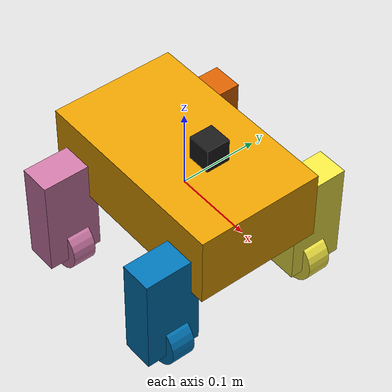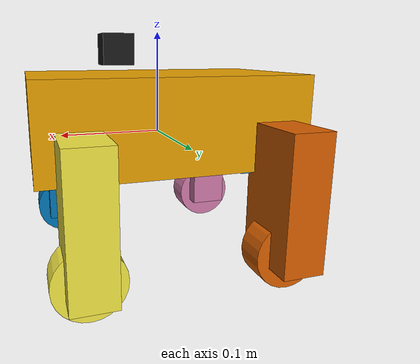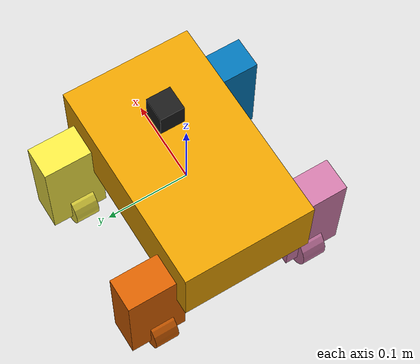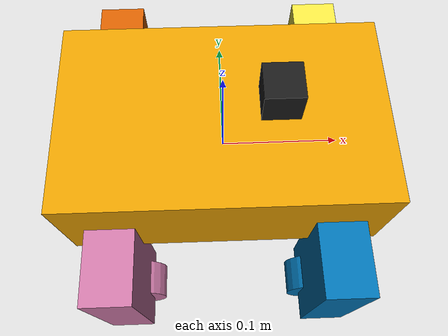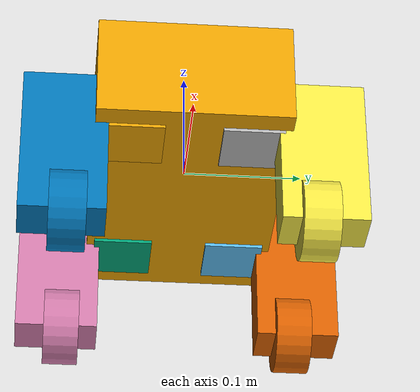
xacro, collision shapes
<?xml version="1.0"?>

<robot name="pavlov_mini" xmlns:xacro="http://ros.org/wiki/xacro">

  <xacro:arg name="is_ignition" default="true"/>
  <!-- Simulation-only tweak: tilt camera down/up (radians). Negative looks down. -->
  <xacro:arg name="camera_sensor_pitch" default="-0.15"/>

  <xacro:include filename="$(find pavlov_description)/urdf/pavlov_mini_ros2_control.xacro" />

  <link name="base_link">
    <visual>
      <geometry>
        <mesh filename= "package://pavlov_description/meshes/base.dae"/>
      </geometry>
    </visual>
    <inertial>
      <origin xyz="-0.000492 0.000002 0.014305" rpy="0 0 0"/>
      <mass value="2.05964"/>
      <inertia
        ixx="0.00372"
        iyy="0.00868"
        izz="0.00992"
        ixy="0.0"
        ixz="0.0"
        iyz="0.0"/>
    </inertial>
    <collision>
      <origin xyz="0.000 0.000 0.015" rpy ="0.000 0.000 0.000"/>
      <geometry>
        <box size="0.260 0.160 0.090"/>
      </geometry>
    </collision>
  </link>

  <link name="camera_link">
    <visual>
      <origin xyz="0.0 0.0 0.0" rpy="0.0 0.0 0.0"/>
      <geometry>
        <box size="0.030 0.030 0.030"/>
      </geometry>
      <material name="black">
        <color rgba="0.1 0.1 0.1 1.0"/>
      </material>
    </visual>
    <inertial>
      <mass value="0.050"/>
      <inertia ixx="0.000001" ixy="0.0" ixz="0.0"
              iyy="0.000001" iyz="0.0"
              izz="0.000001"/>
    </inertial>
    <collision>
      <origin xyz="0.0 0.0 0.0" rpy="0.0 0.0 0.0"/>
      <geometry>
        <box size="0.030 0.030 0.030"/>
      </geometry>
    </collision>
  </link>

  <link name="camera_optical_frame">
    <inertial>
      <mass value="0.001"/>
      <inertia ixx="0.000001" ixy="0.0" ixz="0.0"
              iyy="0.000001" iyz="0.0"
              izz="0.000001"/>
    </inertial>
  </link>

  <link name="hip_fl_ref">
    <visual>
      <geometry>
        <box size="0.002 0.002 0.002"/>
      </geometry>
    </visual>
    <inertial>
      <origin xyz="0.000 0.000 0.000" rpy ="0.000 0.000 0.000"/>
      <mass value="0.001"/>  <!-- 0.000 yerine -->
      <inertia
        ixx="0.000001" ixy="0.00000" ixz="0.00000"
        iyy="0.000001" iyz="0.00000"
        izz="0.000001"/>
    </inertial>
    <collision>
      <origin xyz="0.000 0.000 0.000" rpy ="0.000 0.000 0.000"/>
      <geometry>
        <box size="0.002 0.002 0.002"/>
      </geometry>
    </collision>
  </link>

  <link name="hip_fr_ref">
    <visual>
      <geometry>
        <box size="0.002 0.002 0.002"/>
      </geometry>
    </visual>
    <inertial>
      <origin xyz="0.000 0.000 0.000" rpy ="0.000 0.000 0.000"/>
      <mass value="0.001"/>
      <inertia
        ixx="0.000001" ixy="0.00000" ixz="0.00000"
        iyy="0.000001" iyz="0.00000"
        izz="0.000001"/>
    </inertial>
    <collision>
      <origin xyz="0.000 0.000 0.000" rpy ="0.000 0.000 0.000"/>
      <geometry>
        <box size="0.002 0.002 0.002"/>
      </geometry>
    </collision>
  </link>

  <link name="hip_bl_ref">
    <visual>
      <geometry>
        <box size="0.002 0.002 0.002"/>
      </geometry>
    </visual>
    <inertial>
      <origin xyz="0.000 0.000 0.000" rpy ="0.000 0.000 0.000"/>
      <mass value="0.001"/>
      <inertia
        ixx="0.000001" ixy="0.00000" ixz="0.00000"
        iyy="0.000001" iyz="0.00000"
        izz="0.000001"/>
    </inertial>
    <collision>
      <origin xyz="0.000 0.000 0.000" rpy ="0.000 0.000 0.000"/>
      <geometry>
        <box size="0.002 0.002 0.002"/>
      </geometry>
    </collision>
  </link>

  <link name="hip_br_ref">
    <visual>
      <geometry>
        <box size="0.002 0.002 0.002"/>
      </geometry>
    </visual>
    <inertial>
      <origin xyz="0.000 0.000 0.000" rpy ="0.000 0.000 0.000"/>
      <mass value="0.001"/>
      <inertia
        ixx="0.000001" ixy="0.00000" ixz="0.00000"
        iyy="0.000001" iyz="0.00000"
        izz="0.000001"/>
    </inertial>
    <collision>
      <origin xyz="0.000 0.000 0.000" rpy ="0.000 0.000 0.000"/>
      <geometry>
        <box size="0.002 0.002 0.002"/>
      </geometry>
    </collision>
  </link>

  <link name="hip_fl_link">
    <visual>
      <geometry>
        <mesh filename= "package://pavlov_description/meshes/hip_fl.dae"/>
      </geometry>
    </visual>
    <inertial>
      <origin xyz="-0.002211 0.000093 0.004829" rpy="0 0 0"/>
      <mass value="0.04528"/>
      <inertia
        ixx="0.00002615"
        iyy="0.00002831"
        izz="0.00002071"
        ixy="0.0"
        ixz="0.0"
        iyz="0.0"/>
    </inertial>
    <collision>
      <origin xyz="-0.005 -0.005 0.005" rpy ="0.000 0.000 0.000"/>
      <geometry>
        <box size="0.050 0.050 0.070"/>
      </geometry>
    </collision>
  </link>

  <link name="hip_fr_link">
    <visual>
      <geometry>
        <mesh filename= "package://pavlov_description/meshes/hip_fr.dae"/>
      </geometry>
    </visual>
    <inertial>
        <origin xyz="-0.002212 -0.000095 0.004830" rpy="0 0 0"/>
        <mass value="0.04528"/>
        <inertia
          ixx="0.00002615"
          iyy="0.00002831"
          izz="0.00002071"
          ixy="0.0"
          ixz="0.0"
          iyz="0.0"/>
    </inertial>
    <collision>
      <origin xyz="-0.005 0.005 0.005" rpy ="0.000 0.000 0.000"/>
      <geometry>
        <box size="0.050 0.050 0.070"/>
      </geometry>
    </collision>
  </link>

  <link name="hip_bl_link">
    <visual>
      <geometry>
        <mesh filename= "package://pavlov_description/meshes/hip_bl.dae"/>
      </geometry>
    </visual>
    <inertial>
      <origin xyz="0.002212 0.000095 0.004830" rpy="0 0 0"/>
      <mass value="0.04528"/>
      <inertia
        ixx="0.00002615"
        iyy="0.00002831"
        izz="0.00002071"
        ixy="0.0"
        ixz="0.0"
        iyz="0.0"/>
    </inertial>
    <collision>
      <origin xyz="0.005 -0.005 0.005" rpy ="0.000 0.000 0.000"/>
      <geometry>
        <box size="0.050 0.050 0.070"/>
      </geometry>
    </collision>
  </link>

  <link name="hip_br_link">
    <visual>
      <geometry>
        <mesh filename= "package://pavlov_description/meshes/hip_br.dae"/>
      </geometry>
    </visual>
    <inertial>
      <origin xyz="0.002211 -0.000093 0.004829" rpy="0 0 0"/>
      <mass value="0.04528"/>
      <inertia
        ixx="0.00002615"
        iyy="0.00002831"
        izz="0.00002071"
        ixy="0.0"
        ixz="0.0"
        iyz="0.0"/>
    </inertial>
    <collision>
      <origin xyz="0.005 0.005 0.005" rpy ="0.000 0.000 0.000"/>
      <geometry>
        <box size="0.050 0.050 0.070"/>
      </geometry>
    </collision>
  </link>

  <link name="femur_fl_link">
    <visual>
      <geometry>
        <mesh filename= "package://pavlov_description/meshes/femur_fl.dae"/>
      </geometry>
    </visual>
    <inertial>
      <origin xyz="-0.000176 0.010059 -0.024478" rpy="0 0 0"/>
      <mass value="0.096623"/>
      <inertia
        ixx="0.00109482916"
        iyy="0.00092023806"
        izz="0.00034947930"
        ixy="0.0"
        ixz="0.0"
        iyz="0.0"/>
    </inertial>
    <collision>
      <origin xyz="0.000 0.015 -0.045" rpy ="0.000 0.000 0.000"/>
      <geometry>
        <box size="0.040 0.070 0.130"/>
      </geometry>
    </collision>
  </link>

  <link name="femur_fr_link">
    <visual>
      <geometry>
        <mesh filename= "package://pavlov_description/meshes/femur_fr.dae"/>
      </geometry>
    </visual>
    <inertial>
      <origin xyz="-0.000176 -0.010119 -0.024478" rpy="0 0 0"/>
      <mass value="0.096623"/>
      <inertia
        ixx="0.00019204"
        iyy="0.00016143"
        izz="0.00006129"
        ixy="0.0"
        ixz="0.0"
        iyz="0.0"/>
    </inertial>
    <collision>
      <origin xyz="0.000 -0.015 -0.045" rpy ="0.000 0.000 0.000"/>
      <geometry>
        <box size="0.040 0.070 0.130"/>
      </geometry>
    </collision>
  </link>

  <link name="femur_bl_link">
    <visual>
      <geometry>
        <mesh filename= "package://pavlov_description/meshes/femur_bl.dae"/>
      </geometry>
    </visual>
    <inertial>
      <origin xyz="-0.000176 0.010059 -0.024478" rpy="0 0 0"/>
      <mass value="0.096623"/>
      <inertia
        ixx="0.00109482916"
        iyy="0.00092023806"
        izz="0.00034947930"
        ixy="0.0"
        ixz="0.0"
        iyz="0.0"/>
    </inertial>
    <collision>
      <origin xyz="0.000 0.015 -0.045" rpy ="0.000 0.000 0.000"/>
      <geometry>
        <box size="0.040 0.070 0.130"/>
      </geometry>
    </collision>
  </link>

  <link name="femur_br_link">
    <visual>
      <geometry>
        <mesh filename= "package://pavlov_description/meshes/femur_br.dae"/>
      </geometry>
    </visual>
    <inertial>
      <origin xyz="-0.000176 -0.010119 -0.024478" rpy="0 0 0"/>
      <mass value="0.096623"/>
      <inertia
        ixx="0.00019204"
        iyy="0.00016143"
        izz="0.00006129"
        ixy="0.0"
        ixz="0.0"
        iyz="0.0"/>
    </inertial>
    <collision>
      <origin xyz="0.000 -0.015 -0.045" rpy ="0.000 0.000 0.000"/>
      <geometry>
        <box size="0.040 0.070 0.130"/>
      </geometry>
    </collision>
  </link>

  <link name="tibia_fl_link">
    <inertial>
      <origin xyz="0 0 0" rpy="0 0 0"/>
      <mass value="0.010"/>
      <inertia ixx="0.000001" ixy="0" ixz="0" iyy="0.000001" iyz="0" izz="0.000001"/>
    </inertial>
  </link>

  <link name="tibia_fr_link">
    <inertial>
      <origin xyz="0 0 0" rpy="0 0 0"/>
      <mass value="0.010"/>
      <inertia ixx="0.000001" ixy="0" ixz="0" iyy="0.000001" iyz="0" izz="0.000001"/>
    </inertial>
  </link>

  <link name="tibia_bl_link">
    <inertial>
      <origin xyz="0 0 0" rpy="0 0 0"/>
      <mass value="0.010"/>
      <inertia ixx="0.000001" ixy="0" ixz="0" iyy="0.000001" iyz="0" izz="0.000001"/>
    </inertial>
  </link>

  <link name="tibia_br_link">
    <inertial>
      <origin xyz="0 0 0" rpy="0 0 0"/>
      <mass value="0.010"/>
      <inertia ixx="0.000001" ixy="0" ixz="0" iyy="0.000001" iyz="0" izz="0.000001"/>
    </inertial>
  </link>

  <link name="wheel_fl_link">
    <visual>
      <origin xyz="0 -0.01406 0" rpy="-1.57079632679 0 0"/>
      <geometry>
        <mesh filename="package://pavlov_description/meshes/wheel_left_link.STL"/>
      </geometry>
    </visual>
    <inertial>
      <origin xyz="0 0 0" rpy="0 0 0"/>
      <mass value="0.0530086043217644" />
      <inertia ixx="1.8792911368909E-05"  ixy="3.31256392204584E-10" ixz="-1.14082001662767E-08"
               iyy="3.11510738759073E-05" iyz="-3.60499245082192E-10"
               izz="1.88266886146847E-05" />
    </inertial>
    <collision>
      <origin xyz="0 0 0" rpy="-1.57079632679 0 0"/>
      <geometry>
        <cylinder radius="0.0325" length="0.0298"/>
      </geometry>
    </collision>
  </link>

  <link name="wheel_fr_link">
    <visual>
      <origin xyz="0 -0.01406 0" rpy="-1.57079632679 0 0"/>
      <geometry>
        <mesh filename="package://pavlov_description/meshes/wheel_right_link.STL"/>
      </geometry>
    </visual>
    <inertial>
      <origin xyz="0 0 0" rpy="0 0 0"/>
      <mass value="0.0530086090966721" />
      <inertia ixx="1.88176298336665E-05" ixy="-4.8444933029987E-10" ixz="1.88163708851143E-08"
               iyy="3.11510738647764E-05" iyz="-6.93560663069607E-11"
               izz="1.8801969558182E-05" />
    </inertial>
    <collision>
      <origin xyz="0 0 0" rpy="-1.57079632679 0 0"/>
      <geometry>
        <cylinder radius="0.0325" length="0.0298"/>
      </geometry>
    </collision>
  </link>

  <link name="wheel_bl_link">
    <visual>
      <origin xyz="0 -0.01406 0" rpy="-1.57079632679 0 0"/>
      <geometry>
        <mesh filename="package://pavlov_description/meshes/wheel_left_link.STL"/>
      </geometry>
    </visual>
    <inertial>
      <origin xyz="0 0 0" rpy="0 0 0"/>
      <mass value="0.0530086043217644" />
      <inertia ixx="1.8792911368909E-05"  ixy="3.31256392204584E-10" ixz="-1.14082001662767E-08"
               iyy="3.11510738759073E-05" iyz="-3.60499245082192E-10"
               izz="1.88266886146847E-05" />
    </inertial>
    <collision>
      <origin xyz="0 0 0" rpy="-1.57079632679 0 0"/>
      <geometry>
        <cylinder radius="0.0325" length="0.0298"/>
      </geometry>
    </collision>
  </link>

  <link name="wheel_br_link">
    <visual>
      <origin xyz="0 -0.01406 0" rpy="-1.57079632679 0 0"/>
      <geometry>
        <mesh filename="package://pavlov_description/meshes/wheel_right_link.STL"/>
      </geometry>
    </visual>
    <inertial>
      <origin xyz="0 0 0" rpy="0 0 0"/>
      <mass value="0.0530086090966721" />
      <inertia ixx="1.88176298336665E-05" ixy="-4.8444933029987E-10" ixz="1.88163708851143E-08"
               iyy="3.11510738647764E-05" iyz="-6.93560663069607E-11"
               izz="1.8801969558182E-05" />
    </inertial>
    <collision>
      <origin xyz="0 0 0" rpy="-1.57079632679 0 0"/>
      <geometry>
        <cylinder radius="0.0325" length="0.0298"/>
      </geometry>
    </collision>
  </link>

  <!-- JOINTS -->

  <joint name="camera_joint" type="fixed" dont_collapse="true">
    <parent link="base_link"/>
    <child link="camera_link"/>
    <origin xyz="0.04312 0.00000 0.08341" rpy="0.0 0.0 0.0"/>
  </joint>

  <joint name="camera_optical_frame_joint" type="fixed" dont_collapse="true">
    <parent link="camera_link"/>
    <child link="camera_optical_frame"/>
    <origin xyz="0.0 0.0 0.0" rpy="-1.5708 0.0 -1.5708"/>
  </joint>

  <joint name="fl_ref" type="fixed" dont_collapse="true">
    <parent link="base_link"/>
    <child  link="hip_fl_ref"/>
    <origin xyz="0.09170 0.05355 -0.00279"/>
  </joint>

  <joint name="fr_ref" type="fixed" dont_collapse="true">
    <parent link="base_link"/>
    <child  link="hip_fr_ref"/>
    <origin xyz="0.09170 -0.05355 -0.00279"/>
  </joint>

  <joint name="bl_ref" type="fixed" dont_collapse="true">
    <parent link="base_link"/>
    <child  link="hip_bl_ref"/>
    <origin xyz="-0.09170 0.05355 -0.00279"/>
  </joint>

  <joint name="br_ref" type="fixed" dont_collapse="true">
    <parent link="base_link"/>
    <child  link="hip_br_ref"/>
    <origin xyz="-0.09170 -0.05355 -0.00279"/>
  </joint>

  <joint name="hip1_fl" type="revolute">
    <axis xyz="1.000 0.000 0.000"/>
    <dynamics damping="1.0" friction="0.2"/>
    <limit effort="80.00000" lower="-0.78540" upper="1.57080" velocity="1.04720"/>
    <parent link="hip_fl_ref"/>
    <child  link="hip_fl_link"/>
    <origin xyz="0.00000 0.00000 0.00000"/>
  </joint>

  <joint name="hip1_fr" type="revolute">
    <axis xyz="1.000 0.000 0.000"/>
    <dynamics damping="1.0" friction="0.2"/>
    <limit effort="80.00000" lower="-0.78540" upper="1.57080" velocity="1.04720"/>
    <parent link="hip_fr_ref"/>
    <child  link="hip_fr_link"/>
    <origin xyz="0.00000 0.00000 0.00000"/>
  </joint>

  <joint name="hip1_bl" type="revolute">
    <axis xyz="1.000 0.000 0.000"/>
    <dynamics damping="1.0" friction="0.2"/>
    <limit effort="80.00000" lower="-0.78540" upper="1.57080" velocity="1.04720"/>
    <parent link="hip_bl_ref"/>
    <child  link="hip_bl_link"/>
    <origin xyz="0.00000 0.00000 0.00000"/>
  </joint>

  <joint name="hip1_br" type="revolute">
    <axis xyz="1.000 0.000 0.000"/>
    <dynamics damping="1.0" friction="0.2"/>
    <limit effort="80.00000" lower="-0.78540" upper="1.57080" velocity="1.04720"/>
    <parent link="hip_br_ref"/>
    <child  link="hip_br_link"/>
    <origin xyz="0.00000 0.00000 0.00000"/>
  </joint>

  <joint name="hip2_fl" type="revolute">
    <axis xyz="0.000 1.000 0.000"/>
    <dynamics damping="1.5" friction="0.3"/>
    <limit effort="80.00000" lower="0.00000" upper="2.35619" velocity="1.04720"/>
    <parent link="hip_fl_link"/>
    <child  link="femur_fl_link"/>
    <origin xyz="0.00000 0.03559 0.00000"/>
  </joint>

  <joint name="hip2_fr" type="revolute">
    <axis xyz="0.000 1.000 0.000"/>
    <dynamics damping="1.5" friction="0.3"/>
    <limit effort="80.00000" lower="0.00000" upper="2.35619" velocity="1.04720"/>
    <parent link="hip_fr_link"/>
    <child  link="femur_fr_link"/>
    <origin xyz="0.00000 -0.03559 0.00000"/>
  </joint>

  <joint name="hip2_bl" type="revolute">
    <axis xyz="0.000 1.000 0.000"/>
    <dynamics damping="1.5" friction="0.3"/>
    <limit effort="80.00000" lower="0.00000" upper="2.35619" velocity="1.04720"/>
    <parent link="hip_bl_link"/>
    <child  link="femur_bl_link"/>
    <origin xyz="0.00000 0.03559 0.00000" />
  </joint>

  <joint name="hip2_br" type="revolute">
    <axis xyz="0.000 1.000 0.000"/>
    <dynamics damping="1.5" friction="0.3"/>
    <limit effort="80.00000" lower="0.00000" upper="2.35619" velocity="1.04720"/>
    <parent link="hip_br_link"/>
    <child  link="femur_br_link"/>
    <origin xyz="0.00000 -0.03559 0.00000"/>
  </joint>

  <joint name="knee_fl" type="revolute">
    <axis xyz="0.000 1.000 0.000"/>
    <dynamics damping="2.0" friction="0.4"/>
    <limit effort="80.00000" lower="-2.35619" upper="-0.22360" velocity="1.04720"/>
    <parent link="femur_fl_link"/>
    <child  link="tibia_fl_link"/>
    <origin xyz="0.00000 0.01071 -0.09996" rpy="0.000 0 0.000"/>
  </joint>

  <joint name="knee_fr" type="revolute">
    <axis xyz="0.000 1.000 0.000"/>
    <dynamics damping="2.0" friction="0.4"/>
    <limit effort="80.00000" lower="-2.35619" upper="-0.22360" velocity="1.04720"/>
    <parent link="femur_fr_link"/>
    <child  link="tibia_fr_link"/>
    <origin xyz="0.00000 -0.01071 -0.09996" rpy="0.000 0 0.000"/>
  </joint>

  <joint name="knee_bl" type="revolute">
    <axis xyz="0.000 1.000 0.000"/>
    <dynamics damping="2.0" friction="0.4"/>
    <limit effort="80.00000" lower="-2.35619" upper="-0.22360" velocity="1.04720"/>
    <parent link="femur_bl_link"/>
    <child  link="tibia_bl_link"/>
    <origin xyz="0.00000 0.01071 -0.09996" rpy="0.000 0 0.000"/>
  </joint>

  <joint name="knee_br" type="revolute">
    <axis xyz="0.000 1.000 0.000"/>
    <dynamics damping="2.0" friction="0.4"/>
    <limit effort="80.00000" lower="-2.35619" upper="-0.22360" velocity="1.04720"/>
    <parent link="femur_br_link"/>
    <child  link="tibia_br_link"/>
    <origin xyz="0.00000 -0.01071 -0.09996" rpy="0.000 0 0.000"/>
  </joint>

  <!-- Wheels mounted at femur end (knee location). Spin axis is +Y. -->
  <joint name="wheel_fl_joint" type="continuous">
    <axis xyz="0 1 0"/>
    <limit effort="20.0" velocity="100.0"/>
    <dynamics damping="0.0" friction="0.0"/>
    <parent link="femur_fl_link"/>
    <child  link="wheel_fl_link"/>
    <origin xyz="0.00000 0.01071 -0.09996" rpy="0 0 0"/>
  </joint>

  <joint name="wheel_fr_joint" type="continuous">
    <axis xyz="0 1 0"/>
    <limit effort="20.0" velocity="100.0"/>
    <dynamics damping="0.0" friction="0.0"/>
    <parent link="femur_fr_link"/>
    <child  link="wheel_fr_link"/>
    <origin xyz="0.00000 -0.01071 -0.09996" rpy="0 0 0"/>
  </joint>

  <joint name="wheel_bl_joint" type="continuous">
    <axis xyz="0 1 0"/>
    <limit effort="20.0" velocity="100.0"/>
    <dynamics damping="0.0" friction="0.0"/>
    <parent link="femur_bl_link"/>
    <child  link="wheel_bl_link"/>
    <origin xyz="0.00000 0.01071 -0.09996" rpy="0 0 0"/>
  </joint>

  <joint name="wheel_br_joint" type="continuous">
    <axis xyz="0 1 0"/>
    <limit effort="20.0" velocity="100.0"/>
    <dynamics damping="0.0" friction="0.0"/>
    <parent link="femur_br_link"/>
    <child  link="wheel_br_link"/>
    <origin xyz="0.00000 -0.01071 -0.09996" rpy="0 0 0"/>
  </joint>

  <xacro:if value="$(arg is_ignition)">
    <gazebo>
      <plugin filename="ign_ros2_control-system" name="ign_ros2_control::IgnitionROS2ControlPlugin">
        <parameters>$(find pavlov_controller)/config/ros2_controllers.yaml</parameters>
        <robot_param>robot_description</robot_param>
        <robot_param_node>robot_state_publisher</robot_param_node>
      </plugin>
    </gazebo>
  </xacro:if>

  <xacro:unless value="$(arg is_ignition)">
    <gazebo>
      <plugin filename="gz_ros2_control-system" name="gz_ros2_control::GazeboSimROS2ControlPlugin">
        <parameters>$(find pavlov_controller)/config/ros2_controllers.yaml</parameters>
        <robot_param>robot_description</robot_param>
        <robot_param_node>robot_state_publisher</robot_param_node>
      </plugin>
    </gazebo>
  </xacro:unless>

  <gazebo reference="base_link">
    <sensor name="camera_sensor" type="camera">
      <pose>0.04312 0 0.08341 0 $(arg camera_sensor_pitch) 0</pose>
      <always_on>1</always_on>
      <update_rate>30</update_rate>
      <visualize>true</visualize>
      <camera>
        <horizontal_fov>1.74s</horizontal_fov>
        <image>
          <width>640</width>
          <height>480</height>
          <format>R8G8B8</format>
        </image>
        <clip>
          <near>0.02</near>
          <far>10.0</far>
        </clip>
      </camera>
    </sensor>
  </gazebo>

</robot>
